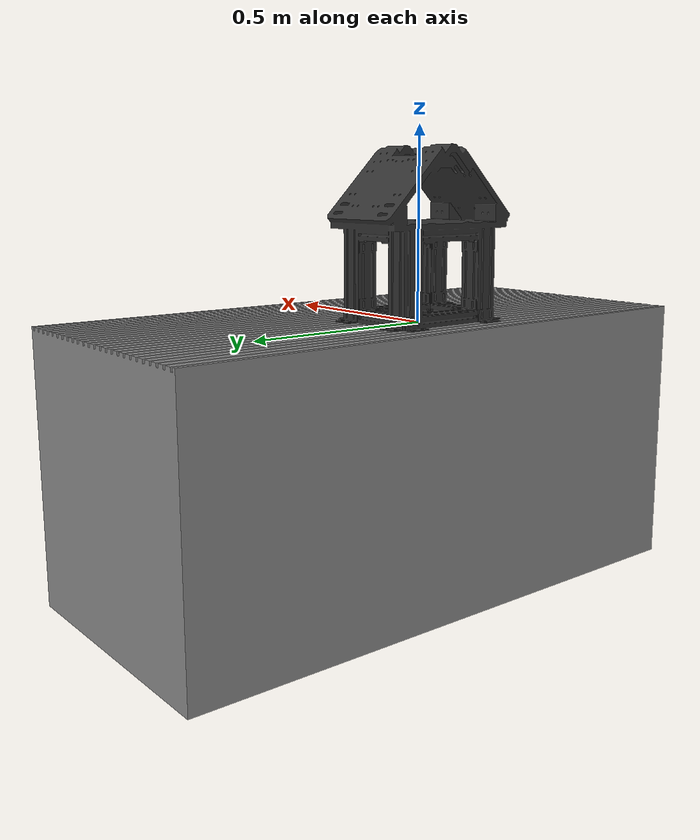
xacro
<?xml version="1.0"?>
<robot name="table_env" xmlns:xacro="http://www.ros.org/wiki/xacro">

  <!-- (선택) material을 이름으로 관리하고 싶으면 이렇게 정의해도 됨 -->
  <material name="mid_gray">
    <color rgba="0.55 0.55 0.55 1.0"/>
  </material>
  <material name="dark_gray">
    <color rgba="0.20 0.20 0.20 1.0"/>
  </material>
  <material name="collision_red">
    <color rgba="1.0 0.0 0.0 1.0"/>
  </material>

  <link name="table_link"/>

  <link name="table_top">
    <visual>
      <origin xyz="-0.185 -0.8 -0.75" rpy="0 0 0"/>
      <geometry>
        <mesh filename="package://franka_kistar_bringup/meshes/table/btable.STL" scale="0.001 0.001 0.001"/>
      </geometry>
      <material name="mid_gray"/>
    </visual>

    <collision>
      <origin xyz="0.05 0. -0.35" rpy="0 0 0"/>
      <geometry>
        <box size="1.0 1.8 0.7"/>
      </geometry>
      <material name="collision_red"/>
    </collision>
  </link>

  <joint name="table_top_joint" type="fixed">
    <parent link="table_link"/>
    <child link="table_top"/>
    <origin xyz="0 0 0" rpy="0 0 0"/>
  </joint>

  <link name="franka_support_body">
    <visual>
      <origin xyz="-0.12 -0.243 0" rpy="1.5708 0 1.5708"/>
      <geometry>
        <mesh filename="package://franka_kistar_bringup/meshes/new_table/Franka_support_body.STL" scale="0.001 0.001 0.001"/>
      </geometry>
      <material name="dark_gray"/>
    </visual>
  </link>

  <joint name="franka_support_body_joint" type="fixed">
    <parent link="table_link"/>
    <child link="franka_support_body"/>
    <origin xyz="0 0 0" rpy="0 0 0"/>
  </joint>

</robot>
